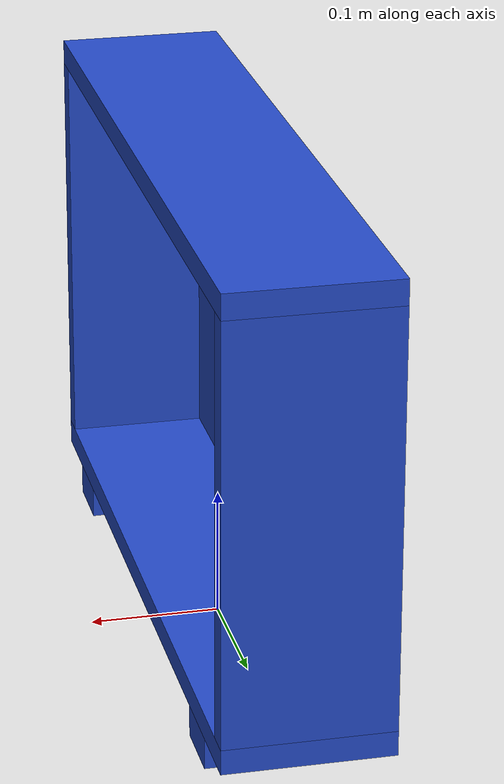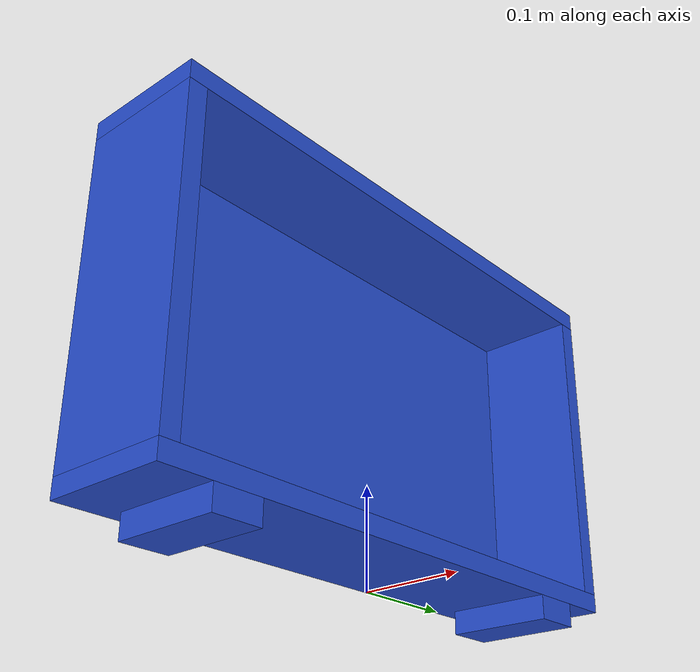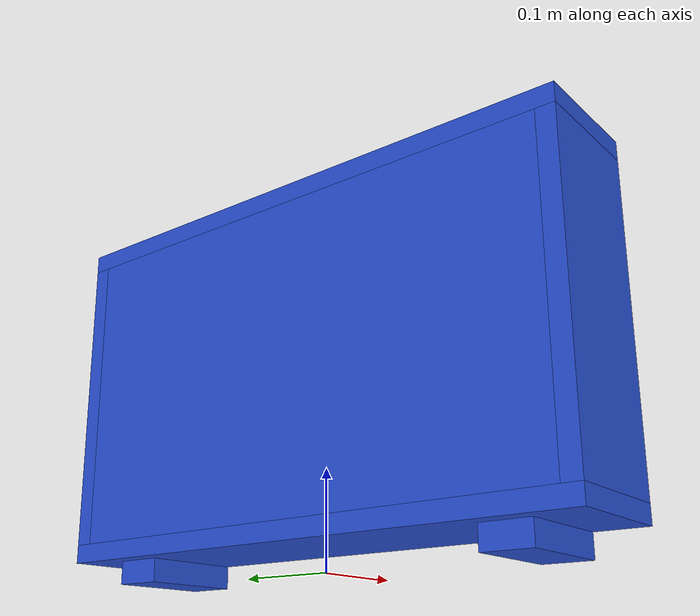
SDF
<?xml version='1.0'?>
<sdf version='1.6'>
  <model name='wooden_case'>
    <link name='base'>
      <pose frame=''>0 -0 0.024 0 -0 0</pose>
      <inertial>
        <pose frame=''>-0.022184 0 0.171592 0 -0 0</pose>
        <mass>3.96264</mass>
        <inertia>
          <ixx>0.213536</ixx>
          <ixy>0</ixy>
          <ixz>0.000779377</ixz>
          <iyy>0.0708943</iyy>
          <iyz>0</iyz>
          <izz>0.154604</izz>
        </inertia>
      </inertial>
      <self_collide>0</self_collide>
      <kinematic>0</kinematic>
      <visual name='visual_back'>
        <pose frame=''>-0.053975 0 0.1778 0 -0 0</pose>
        <geometry>
          <box>
            <size>0.01905 0.5461 0.3175</size>
          </box>
        </geometry>
        <material>
          <script>
            <uri>file://media/materials/scripts/gazebo.material</uri>
            <name>Gazebo/Blue</name>
          </script>
          <shader type='pixel'/>
          <ambient>1 1 1 1</ambient>
          <diffuse>1 1 1 1</diffuse>
          <specular>0.2 0.2 0.2 1</specular>
          <emissive>0 0 0 1</emissive>
        </material>
        <transparency>0</transparency>
        <cast_shadows>1</cast_shadows>
      </visual>
      <visual name='visual_bottom'>
        <pose frame=''>0 0 0.009525 0 -0 0</pose>
        <geometry>
          <box>
            <size>0.127 0.5842 0.01905</size>
          </box>
        </geometry>
        <material>
          <script>
            <uri>file://media/materials/scripts/gazebo.material</uri>
            <name>Gazebo/Blue</name>
          </script>
          <shader type='pixel'/>
          <ambient>1 1 1 1</ambient>
          <diffuse>1 1 1 1</diffuse>
          <specular>0.2 0.2 0.2 1</specular>
          <emissive>0 0 0 1</emissive>
        </material>
        <transparency>0</transparency>
        <cast_shadows>1</cast_shadows>
      </visual>
      <visual name='visual_left'>
        <pose frame=''>0 -0.282575 0.1778 0 -0 0</pose>
        <geometry>
          <box>
            <size>0.127 0.01905 0.3175</size>
          </box>
        </geometry>
        <material>
          <script>
            <uri>file://media/materials/scripts/gazebo.material</uri>
            <name>Gazebo/Blue</name>
          </script>
          <shader type='pixel'/>
          <ambient>1 1 1 1</ambient>
          <diffuse>1 1 1 1</diffuse>
          <specular>0.2 0.2 0.2 1</specular>
          <emissive>0 0 0 1</emissive>
        </material>
        <transparency>0</transparency>
        <cast_shadows>1</cast_shadows>
      </visual>
      <visual name='visual_top'>
        <pose frame=''>0 0 0.346075 0 -0 0</pose>
        <geometry>
          <box>
            <size>0.127 0.5842 0.01905</size>
          </box>
        </geometry>
        <material>
          <script>
            <uri>file://media/materials/scripts/gazebo.material</uri>
            <name>Gazebo/Blue</name>
          </script>
          <shader type='pixel'/>
          <ambient>1 1 1 1</ambient>
          <diffuse>1 1 1 1</diffuse>
          <specular>0.2 0.2 0.2 1</specular>
          <emissive>0 0 0 1</emissive>
        </material>
        <transparency>0</transparency>
        <cast_shadows>1</cast_shadows>
      </visual>
      <visual name='visual_right'>
        <pose frame=''>0 0.282575 0.1778 0 -0 0</pose>
        <geometry>
          <box>
            <size>0.127 0.01905 0.3175</size>
          </box>
        </geometry>
        <material>
          <script>
            <uri>file://media/materials/scripts/gazebo.material</uri>
            <name>Gazebo/Blue</name>
          </script>
          <shader type='pixel'/>
          <ambient>1 1 1 1</ambient>
          <diffuse>1 1 1 1</diffuse>
          <specular>0.2 0.2 0.2 1</specular>
          <emissive>0 0 0 1</emissive>
        </material>
        <transparency>0</transparency>
        <cast_shadows>1</cast_shadows>
      </visual>
      <visual name='visual_block_left'>
        <pose frame=''>0.0095 -0.2151 -0.012 0 -0 0</pose>
        <geometry>
          <box>
            <size>0.108 0.05 0.024</size>
          </box>
        </geometry>
        <material>
          <script>
            <uri>file://media/materials/scripts/gazebo.material</uri>
            <name>Gazebo/Blue</name>
          </script>
          <shader type='pixel'/>
          <ambient>1 1 1 1</ambient>
          <diffuse>1 1 1 1</diffuse>
          <specular>0.2 0.2 0.2 1</specular>
          <emissive>0 0 0 1</emissive>
        </material>
        <transparency>0</transparency>
        <cast_shadows>1</cast_shadows>
      </visual>
      <visual name='visual_block_right'>
        <pose frame=''>0.0095 0.2151 -0.012 0 -0 0</pose>
        <geometry>
          <box>
            <size>0.108 0.05 0.024</size>
          </box>
        </geometry>
        <material>
          <script>
            <uri>file://media/materials/scripts/gazebo.material</uri>
            <name>Gazebo/Blue</name>
          </script>
          <shader type='pixel'/>
          <ambient>1 1 1 1</ambient>
          <diffuse>1 1 1 1</diffuse>
          <specular>0.2 0.2 0.2 1</specular>
          <emissive>0 0 0 1</emissive>
        </material>
        <transparency>0</transparency>
        <cast_shadows>1</cast_shadows>
      </visual>
      <collision name='collision_back'>
        <laser_retro>0</laser_retro>
        <max_contacts>10</max_contacts>
        <pose frame=''>-0.053975 0 0.1778 0 -0 0</pose>
        <geometry>
          <box>
            <size>0.01905 0.5461 0.3175</size>
          </box>
        </geometry>
        <surface>
          <friction>
            <ode>
              <mu>1</mu>
              <mu2>1</mu2>
              <fdir1>0 0 0</fdir1>
              <slip1>0</slip1>
              <slip2>0</slip2>
            </ode>
            <torsional>
              <coefficient>1</coefficient>
              <patch_radius>0</patch_radius>
              <surface_radius>0.01</surface_radius>
              <use_patch_radius>0</use_patch_radius>
              <ode>
                <slip>0</slip>
              </ode>
            </torsional>
          </friction>
          <bounce>
            <restitution_coefficient>0</restitution_coefficient>
            <threshold>1e+06</threshold>
          </bounce>
          <contact>
            <collide_without_contact>0</collide_without_contact>
            <collide_without_contact_bitmask>1</collide_without_contact_bitmask>
            <collide_bitmask>1</collide_bitmask>
            <ode>
              <soft_cfm>0</soft_cfm>
              <soft_erp>0.2</soft_erp>
              <kp>100000</kp>
              <kd>100</kd>
              <max_vel>100</max_vel>
              <min_depth>0.001</min_depth>
            </ode>
            <bullet>
              <split_impulse>1</split_impulse>
              <split_impulse_penetration_threshold>-0.01</split_impulse_penetration_threshold>
              <soft_cfm>0</soft_cfm>
              <soft_erp>0.2</soft_erp>
              <kp>100000</kp>
              <kd>100</kd>
            </bullet>
          </contact>
        </surface>
      </collision>
      <collision name='collision_bottom'>
        <laser_retro>0</laser_retro>
        <max_contacts>10</max_contacts>
        <pose frame=''>0 0 0.009525 0 -0 0</pose>
        <geometry>
          <box>
            <size>0.127 0.5842 0.01905</size>
          </box>
        </geometry>
        <surface>
          <friction>
            <ode>
              <mu>1</mu>
              <mu2>1</mu2>
              <fdir1>0 0 0</fdir1>
              <slip1>0</slip1>
              <slip2>0</slip2>
            </ode>
            <torsional>
              <coefficient>1</coefficient>
              <patch_radius>0</patch_radius>
              <surface_radius>0.01</surface_radius>
              <use_patch_radius>0</use_patch_radius>
              <ode>
                <slip>0</slip>
              </ode>
            </torsional>
          </friction>
          <bounce>
            <restitution_coefficient>0</restitution_coefficient>
            <threshold>1e+06</threshold>
          </bounce>
          <contact>
            <collide_without_contact>0</collide_without_contact>
            <collide_without_contact_bitmask>1</collide_without_contact_bitmask>
            <collide_bitmask>1</collide_bitmask>
            <ode>
              <soft_cfm>0</soft_cfm>
              <soft_erp>0.2</soft_erp>
              <kp>100000</kp>
              <kd>100</kd>
              <max_vel>100</max_vel>
              <min_depth>0.001</min_depth>
            </ode>
            <bullet>
              <split_impulse>1</split_impulse>
              <split_impulse_penetration_threshold>-0.01</split_impulse_penetration_threshold>
              <soft_cfm>0</soft_cfm>
              <soft_erp>0.2</soft_erp>
              <kp>100000</kp>
              <kd>100</kd>
            </bullet>
          </contact>
        </surface>
      </collision>
      <collision name='collision_top'>
        <laser_retro>0</laser_retro>
        <max_contacts>10</max_contacts>
        <pose frame=''>0 0 0.346075 0 -0 0</pose>
        <geometry>
          <box>
            <size>0.127 0.5842 0.01905</size>
          </box>
        </geometry>
        <surface>
          <friction>
            <ode>
              <mu>1</mu>
              <mu2>1</mu2>
              <fdir1>0 0 0</fdir1>
              <slip1>0</slip1>
              <slip2>0</slip2>
            </ode>
            <torsional>
              <coefficient>1</coefficient>
              <patch_radius>0</patch_radius>
              <surface_radius>0.01</surface_radius>
              <use_patch_radius>0</use_patch_radius>
              <ode>
                <slip>0</slip>
              </ode>
            </torsional>
          </friction>
          <bounce>
            <restitution_coefficient>0</restitution_coefficient>
            <threshold>1e+06</threshold>
          </bounce>
          <contact>
            <collide_without_contact>0</collide_without_contact>
            <collide_without_contact_bitmask>1</collide_without_contact_bitmask>
            <collide_bitmask>1</collide_bitmask>
            <ode>
              <soft_cfm>0</soft_cfm>
              <soft_erp>0.2</soft_erp>
              <kp>100000</kp>
              <kd>100</kd>
              <max_vel>100</max_vel>
              <min_depth>0.001</min_depth>
            </ode>
            <bullet>
              <split_impulse>1</split_impulse>
              <split_impulse_penetration_threshold>-0.01</split_impulse_penetration_threshold>
              <soft_cfm>0</soft_cfm>
              <soft_erp>0.2</soft_erp>
              <kp>100000</kp>
              <kd>100</kd>
            </bullet>
          </contact>
        </surface>
      </collision>
      <collision name='collision_block_right'>
        <laser_retro>0</laser_retro>
        <max_contacts>10</max_contacts>
        <pose frame=''>0.0095 0.2151 -0.012 0 -0 0</pose>
        <geometry>
          <box>
            <size>0.108 0.05 0.024</size>
          </box>
        </geometry>
        <surface>
          <friction>
            <ode>
              <mu>1</mu>
              <mu2>1</mu2>
              <fdir1>0 0 0</fdir1>
              <slip1>0</slip1>
              <slip2>0</slip2>
            </ode>
            <torsional>
              <coefficient>1</coefficient>
              <patch_radius>0</patch_radius>
              <surface_radius>0.01</surface_radius>
              <use_patch_radius>0</use_patch_radius>
              <ode>
                <slip>0</slip>
              </ode>
            </torsional>
          </friction>
          <bounce>
            <restitution_coefficient>0</restitution_coefficient>
            <threshold>1e+06</threshold>
          </bounce>
          <contact>
            <collide_without_contact>0</collide_without_contact>
            <collide_without_contact_bitmask>1</collide_without_contact_bitmask>
            <collide_bitmask>1</collide_bitmask>
            <ode>
              <soft_cfm>0</soft_cfm>
              <soft_erp>0.2</soft_erp>
              <kp>100000</kp>
              <kd>100</kd>
              <max_vel>100</max_vel>
              <min_depth>0.001</min_depth>
            </ode>
            <bullet>
              <split_impulse>1</split_impulse>
              <split_impulse_penetration_threshold>-0.01</split_impulse_penetration_threshold>
              <soft_cfm>0</soft_cfm>
              <soft_erp>0.2</soft_erp>
              <kp>100000</kp>
              <kd>100</kd>
            </bullet>
          </contact>
        </surface>
      </collision>
      <collision name='collision_left'>
        <laser_retro>0</laser_retro>
        <max_contacts>10</max_contacts>
        <pose frame=''>0 -0.282575 0.1778 0 -0 0</pose>
        <geometry>
          <box>
            <size>0.127 0.01905 0.3175</size>
          </box>
        </geometry>
        <surface>
          <friction>
            <ode>
              <mu>1</mu>
              <mu2>1</mu2>
              <fdir1>0 0 0</fdir1>
              <slip1>0</slip1>
              <slip2>0</slip2>
            </ode>
            <torsional>
              <coefficient>1</coefficient>
              <patch_radius>0</patch_radius>
              <surface_radius>0.01</surface_radius>
              <use_patch_radius>0</use_patch_radius>
              <ode>
                <slip>0</slip>
              </ode>
            </torsional>
          </friction>
          <bounce>
            <restitution_coefficient>0</restitution_coefficient>
            <threshold>1e+06</threshold>
          </bounce>
          <contact>
            <collide_without_contact>0</collide_without_contact>
            <collide_without_contact_bitmask>1</collide_without_contact_bitmask>
            <collide_bitmask>1</collide_bitmask>
            <ode>
              <soft_cfm>0</soft_cfm>
              <soft_erp>0.2</soft_erp>
              <kp>100000</kp>
              <kd>100</kd>
              <max_vel>100</max_vel>
              <min_depth>0.001</min_depth>
            </ode>
            <bullet>
              <split_impulse>1</split_impulse>
              <split_impulse_penetration_threshold>-0.01</split_impulse_penetration_threshold>
              <soft_cfm>0</soft_cfm>
              <soft_erp>0.2</soft_erp>
              <kp>100000</kp>
              <kd>100</kd>
            </bullet>
          </contact>
        </surface>
      </collision>
      <collision name='collision_right'>
        <laser_retro>0</laser_retro>
        <max_contacts>10</max_contacts>
        <pose frame=''>0 0.282575 0.1778 0 -0 0</pose>
        <geometry>
          <box>
            <size>0.127 0.01905 0.3175</size>
          </box>
        </geometry>
        <surface>
          <friction>
            <ode>
              <mu>1</mu>
              <mu2>1</mu2>
              <fdir1>0 0 0</fdir1>
              <slip1>0</slip1>
              <slip2>0</slip2>
            </ode>
            <torsional>
              <coefficient>1</coefficient>
              <patch_radius>0</patch_radius>
              <surface_radius>0.01</surface_radius>
              <use_patch_radius>0</use_patch_radius>
              <ode>
                <slip>0</slip>
              </ode>
            </torsional>
          </friction>
          <bounce>
            <restitution_coefficient>0</restitution_coefficient>
            <threshold>1e+06</threshold>
          </bounce>
          <contact>
            <collide_without_contact>0</collide_without_contact>
            <collide_without_contact_bitmask>1</collide_without_contact_bitmask>
            <collide_bitmask>1</collide_bitmask>
            <ode>
              <soft_cfm>0</soft_cfm>
              <soft_erp>0.2</soft_erp>
              <kp>100000</kp>
              <kd>100</kd>
              <max_vel>100</max_vel>
              <min_depth>0.001</min_depth>
            </ode>
            <bullet>
              <split_impulse>1</split_impulse>
              <split_impulse_penetration_threshold>-0.01</split_impulse_penetration_threshold>
              <soft_cfm>0</soft_cfm>
              <soft_erp>0.2</soft_erp>
              <kp>100000</kp>
              <kd>100</kd>
            </bullet>
          </contact>
        </surface>
      </collision>
      <collision name='collision_block_left'>
        <laser_retro>0</laser_retro>
        <max_contacts>10</max_contacts>
        <pose frame=''>0.0095 -0.2151 -0.012 0 -0 0</pose>
        <geometry>
          <box>
            <size>0.108 0.05 0.024</size>
          </box>
        </geometry>
        <surface>
          <friction>
            <ode>
              <mu>1</mu>
              <mu2>1</mu2>
              <fdir1>0 0 0</fdir1>
              <slip1>0</slip1>
              <slip2>0</slip2>
            </ode>
            <torsional>
              <coefficient>1</coefficient>
              <patch_radius>0</patch_radius>
              <surface_radius>0.01</surface_radius>
              <use_patch_radius>0</use_patch_radius>
              <ode>
                <slip>0</slip>
              </ode>
            </torsional>
          </friction>
          <bounce>
            <restitution_coefficient>0</restitution_coefficient>
            <threshold>1e+06</threshold>
          </bounce>
          <contact>
            <collide_without_contact>0</collide_without_contact>
            <collide_without_contact_bitmask>1</collide_without_contact_bitmask>
            <collide_bitmask>1</collide_bitmask>
            <ode>
              <soft_cfm>0</soft_cfm>
              <soft_erp>0.2</soft_erp>
              <kp>100000</kp>
              <kd>100</kd>
              <max_vel>100</max_vel>
              <min_depth>0.001</min_depth>
            </ode>
            <bullet>
              <split_impulse>1</split_impulse>
              <split_impulse_penetration_threshold>-0.01</split_impulse_penetration_threshold>
              <soft_cfm>0</soft_cfm>
              <soft_erp>0.2</soft_erp>
              <kp>100000</kp>
              <kd>100</kd>
            </bullet>
          </contact>
        </surface>
      </collision>
    </link>
    <static>0</static>
    <allow_auto_disable>1</allow_auto_disable>
  </model>
</sdf>
